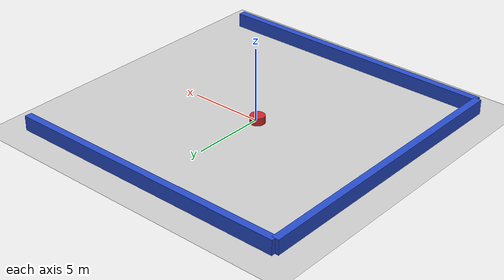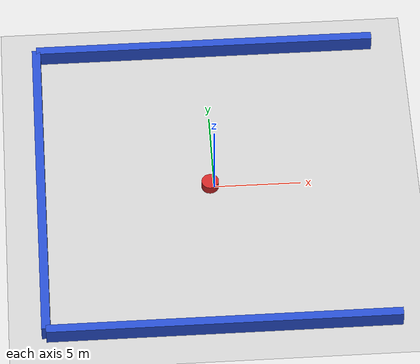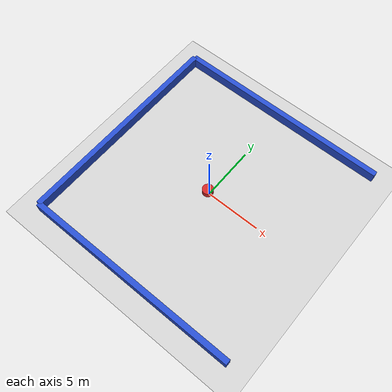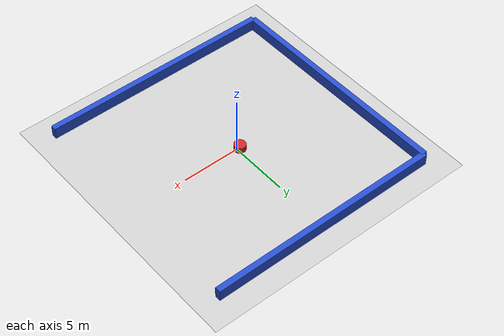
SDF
<?xml version="1.0" ?>
<sdf version="1.6">
   <world name="default">
    <model name="ground_plane">
      <static>1</static>
      <link name="link">
        <collision name="collision">
          <geometry><plane><normal>0 0 1</normal><size>100 100</size></plane></geometry>
          <surface><friction><ode><mu>100</mu><mu2>50</mu2></ode><torsional><ode/></torsional></friction><contact><ode/></contact></surface>
        </collision>
        <visual name="visual">
          <cast_shadows>0</cast_shadows>
          <geometry><plane><normal>0 0 1</normal><size>100 100</size></plane></geometry>
          <material><ambient>0.8 0.8 0.8 1</ambient><diffuse>0.8 0.8 0.8 1</diffuse><specular>0.01 0.01 0.01 1</specular></material>
        </visual>
      </link>
    </model>
    <light name="sun" type="directional">
      <cast_shadows>1</cast_shadows>
      <pose>0 0 10 0 0 0</pose>
      <diffuse>1 1 1 1</diffuse>
      <specular>0.1 0.1 0.1 1</specular>
      <attenuation><range>1000</range><constant>0.9</constant><linear>0.01</linear><quadratic>0.001</quadratic></attenuation>
      <direction>-0.5 0.5 -1</direction>
    </light>

    <model name='hardlibobs_142'>
      <static>1</static>
      <pose frame=''>-0.225000 0.075000 0.000000 0.000000 0.000000 0.000000</pose>
      <link name='link'>
        <inertial>
          <mass>1</mass>
          <inertia>
            <ixx>0.145833</ixx>
            <ixy>0</ixy>
            <ixz>0</ixz>
            <iyy>0.145833</iyy>
            <iyz>0</iyz>
            <izz>0.125</izz>
          </inertia>
        </inertial>
        <collision name='collision'>
           <geometry>
            <cylinder>
                <radius>0.5000</radius>
                 <length> 1 </length>
            </cylinder>
          </geometry>
           <surface>
            <contact>
              <ode/>
            </contact>
            <bounce/>
            <friction>
              <torsional>
                <ode/>
              </torsional>
              <ode/>
            </friction>
          </surface>
        </collision>
        <visual name='visual'>
           <geometry>
            <cylinder>
                <radius>0.5000</radius>
                 <length> 1 </length>
            </cylinder>
          </geometry>
          <material>
            <script>
              <name>Gazebo/Red</name>
              <uri>file://media/materials/scripts/gazebo.material</uri>
            </script>
          </material>
        </visual>
        <self_collide>0</self_collide>
        <kinematic>0</kinematic>
        <gravity>1</gravity>
      </link>
      <plugin name='hardlibobs_142' filename='hardlibobs_142.so'/>
    </model>

    <model name='hardlibobs_152'>
      <static>1</static>
      <pose frame=''>-0.225000 0.075000 0.000000 0.000000 0.000000 0.000000</pose>
      <link name='link'>
        <inertial>
          <mass>1</mass>
          <inertia>
            <ixx>0.145833</ixx>
            <ixy>0</ixy>
            <ixz>0</ixz>
            <iyy>0.145833</iyy>
            <iyz>0</iyz>
            <izz>0.125</izz>
          </inertia>
        </inertial>
        <collision name='collision'>
           <geometry>
            <cylinder>
                <radius>0.5000</radius>
                 <length> 1 </length>
            </cylinder>
          </geometry>
           <surface>
            <contact>
              <ode/>
            </contact>
            <bounce/>
            <friction>
              <torsional>
                <ode/>
              </torsional>
              <ode/>
            </friction>
          </surface>
        </collision>
        <visual name='visual'>
           <geometry>
            <cylinder>
                <radius>0.5000</radius>
                 <length> 1 </length>
            </cylinder>
          </geometry>
          <material>
            <script>
              <name>Gazebo/Red</name>
              <uri>file://media/materials/scripts/gazebo.material</uri>
            </script>
          </material>
        </visual>
        <self_collide>0</self_collide>
        <kinematic>0</kinematic>
        <gravity>1</gravity>
      </link>
      <plugin name='hardlibobs_152' filename='hardlibobs_152.so'/>
    </model>

    <model name='hardlibobs_107'>
      <static>1</static>
      <pose frame=''>-0.225000 0.075000 0.000000 0.000000 0.000000 0.000000</pose>
      <link name='link'>
        <inertial>
          <mass>1</mass>
          <inertia>
            <ixx>0.145833</ixx>
            <ixy>0</ixy>
            <ixz>0</ixz>
            <iyy>0.145833</iyy>
            <iyz>0</iyz>
            <izz>0.125</izz>
          </inertia>
        </inertial>
        <collision name='collision'>
           <geometry>
            <cylinder>
                <radius>0.5000</radius>
                 <length> 1 </length>
            </cylinder>
          </geometry>
           <surface>
            <contact>
              <ode/>
            </contact>
            <bounce/>
            <friction>
              <torsional>
                <ode/>
              </torsional>
              <ode/>
            </friction>
          </surface>
        </collision>
        <visual name='visual'>
           <geometry>
            <cylinder>
                <radius>0.5000</radius>
                 <length> 1 </length>
            </cylinder>
          </geometry>
          <material>
            <script>
              <name>Gazebo/Red</name>
              <uri>file://media/materials/scripts/gazebo.material</uri>
            </script>
          </material>
        </visual>
        <self_collide>0</self_collide>
        <kinematic>0</kinematic>
        <gravity>1</gravity>
      </link>
      <plugin name='hardlibobs_107' filename='hardlibobs_107.so'/>
    </model>

    <model name='hardlibobs_11'>
      <static>1</static>
      <pose frame=''>-0.225000 0.075000 0.000000 0.000000 0.000000 0.000000</pose>
      <link name='link'>
        <inertial>
          <mass>1</mass>
          <inertia>
            <ixx>0.145833</ixx>
            <ixy>0</ixy>
            <ixz>0</ixz>
            <iyy>0.145833</iyy>
            <iyz>0</iyz>
            <izz>0.125</izz>
          </inertia>
        </inertial>
        <collision name='collision'>
           <geometry>
            <cylinder>
                <radius>0.5000</radius>
                 <length> 1 </length>
            </cylinder>
          </geometry>
           <surface>
            <contact>
              <ode/>
            </contact>
            <bounce/>
            <friction>
              <torsional>
                <ode/>
              </torsional>
              <ode/>
            </friction>
          </surface>
        </collision>
        <visual name='visual'>
           <geometry>
            <cylinder>
                <radius>0.5000</radius>
                 <length> 1 </length>
            </cylinder>
          </geometry>
          <material>
            <script>
              <name>Gazebo/Red</name>
              <uri>file://media/materials/scripts/gazebo.material</uri>
            </script>
          </material>
        </visual>
        <self_collide>0</self_collide>
        <kinematic>0</kinematic>
        <gravity>1</gravity>
      </link>
      <plugin name='hardlibobs_11' filename='hardlibobs_11.so'/>
    </model>

    <model name='hardlibobs_197'>
      <static>1</static>
      <pose frame=''>-0.225000 0.075000 0.000000 0.000000 0.000000 0.000000</pose>
      <link name='link'>
        <inertial>
          <mass>1</mass>
          <inertia>
            <ixx>0.145833</ixx>
            <ixy>0</ixy>
            <ixz>0</ixz>
            <iyy>0.145833</iyy>
            <iyz>0</iyz>
            <izz>0.125</izz>
          </inertia>
        </inertial>
        <collision name='collision'>
           <geometry>
            <cylinder>
                <radius>0.5000</radius>
                 <length> 1 </length>
            </cylinder>
          </geometry>
           <surface>
            <contact>
              <ode/>
            </contact>
            <bounce/>
            <friction>
              <torsional>
                <ode/>
              </torsional>
              <ode/>
            </friction>
          </surface>
        </collision>
        <visual name='visual'>
           <geometry>
            <cylinder>
                <radius>0.5000</radius>
                 <length> 1 </length>
            </cylinder>
          </geometry>
          <material>
            <script>
              <name>Gazebo/Red</name>
              <uri>file://media/materials/scripts/gazebo.material</uri>
            </script>
          </material>
        </visual>
        <self_collide>0</self_collide>
        <kinematic>0</kinematic>
        <gravity>1</gravity>
      </link>
      <plugin name='hardlibobs_197' filename='hardlibobs_197.so'/>
    </model>

    <model name='hardlibobs_190'>
      <static>1</static>
      <pose frame=''>-0.225000 0.075000 0.000000 0.000000 0.000000 0.000000</pose>
      <link name='link'>
        <inertial>
          <mass>1</mass>
          <inertia>
            <ixx>0.145833</ixx>
            <ixy>0</ixy>
            <ixz>0</ixz>
            <iyy>0.145833</iyy>
            <iyz>0</iyz>
            <izz>0.125</izz>
          </inertia>
        </inertial>
        <collision name='collision'>
           <geometry>
            <cylinder>
                <radius>0.5000</radius>
                 <length> 1 </length>
            </cylinder>
          </geometry>
           <surface>
            <contact>
              <ode/>
            </contact>
            <bounce/>
            <friction>
              <torsional>
                <ode/>
              </torsional>
              <ode/>
            </friction>
          </surface>
        </collision>
        <visual name='visual'>
           <geometry>
            <cylinder>
                <radius>0.5000</radius>
                 <length> 1 </length>
            </cylinder>
          </geometry>
          <material>
            <script>
              <name>Gazebo/Red</name>
              <uri>file://media/materials/scripts/gazebo.material</uri>
            </script>
          </material>
        </visual>
        <self_collide>0</self_collide>
        <kinematic>0</kinematic>
        <gravity>1</gravity>
      </link>
      <plugin name='hardlibobs_190' filename='hardlibobs_190.so'/>
    </model>

    <model name='hardlibobs_79'>
      <static>1</static>
      <pose frame=''>-0.225000 0.075000 0.000000 0.000000 0.000000 0.000000</pose>
      <link name='link'>
        <inertial>
          <mass>1</mass>
          <inertia>
            <ixx>0.145833</ixx>
            <ixy>0</ixy>
            <ixz>0</ixz>
            <iyy>0.145833</iyy>
            <iyz>0</iyz>
            <izz>0.125</izz>
          </inertia>
        </inertial>
        <collision name='collision'>
           <geometry>
            <cylinder>
                <radius>0.5000</radius>
                 <length> 1 </length>
            </cylinder>
          </geometry>
           <surface>
            <contact>
              <ode/>
            </contact>
            <bounce/>
            <friction>
              <torsional>
                <ode/>
              </torsional>
              <ode/>
            </friction>
          </surface>
        </collision>
        <visual name='visual'>
           <geometry>
            <cylinder>
                <radius>0.5000</radius>
                 <length> 1 </length>
            </cylinder>
          </geometry>
          <material>
            <script>
              <name>Gazebo/Red</name>
              <uri>file://media/materials/scripts/gazebo.material</uri>
            </script>
          </material>
        </visual>
        <self_collide>0</self_collide>
        <kinematic>0</kinematic>
        <gravity>1</gravity>
      </link>
      <plugin name='hardlibobs_79' filename='hardlibobs_79.so'/>
    </model>

    <model name='hardlibobs_191'>
      <static>1</static>
      <pose frame=''>-0.225000 0.075000 0.000000 0.000000 0.000000 0.000000</pose>
      <link name='link'>
        <inertial>
          <mass>1</mass>
          <inertia>
            <ixx>0.145833</ixx>
            <ixy>0</ixy>
            <ixz>0</ixz>
            <iyy>0.145833</iyy>
            <iyz>0</iyz>
            <izz>0.125</izz>
          </inertia>
        </inertial>
        <collision name='collision'>
           <geometry>
            <cylinder>
                <radius>0.5000</radius>
                 <length> 1 </length>
            </cylinder>
          </geometry>
           <surface>
            <contact>
              <ode/>
            </contact>
            <bounce/>
            <friction>
              <torsional>
                <ode/>
              </torsional>
              <ode/>
            </friction>
          </surface>
        </collision>
        <visual name='visual'>
           <geometry>
            <cylinder>
                <radius>0.5000</radius>
                 <length> 1 </length>
            </cylinder>
          </geometry>
          <material>
            <script>
              <name>Gazebo/Red</name>
              <uri>file://media/materials/scripts/gazebo.material</uri>
            </script>
          </material>
        </visual>
        <self_collide>0</self_collide>
        <kinematic>0</kinematic>
        <gravity>1</gravity>
      </link>
      <plugin name='hardlibobs_191' filename='hardlibobs_191.so'/>
    </model>

    <model name='hardlibobs_22'>
      <static>1</static>
      <pose frame=''>-0.225000 0.075000 0.000000 0.000000 0.000000 0.000000</pose>
      <link name='link'>
        <inertial>
          <mass>1</mass>
          <inertia>
            <ixx>0.145833</ixx>
            <ixy>0</ixy>
            <ixz>0</ixz>
            <iyy>0.145833</iyy>
            <iyz>0</iyz>
            <izz>0.125</izz>
          </inertia>
        </inertial>
        <collision name='collision'>
           <geometry>
            <cylinder>
                <radius>0.5000</radius>
                 <length> 1 </length>
            </cylinder>
          </geometry>
           <surface>
            <contact>
              <ode/>
            </contact>
            <bounce/>
            <friction>
              <torsional>
                <ode/>
              </torsional>
              <ode/>
            </friction>
          </surface>
        </collision>
        <visual name='visual'>
           <geometry>
            <cylinder>
                <radius>0.5000</radius>
                 <length> 1 </length>
            </cylinder>
          </geometry>
          <material>
            <script>
              <name>Gazebo/Red</name>
              <uri>file://media/materials/scripts/gazebo.material</uri>
            </script>
          </material>
        </visual>
        <self_collide>0</self_collide>
        <kinematic>0</kinematic>
        <gravity>1</gravity>
      </link>
      <plugin name='hardlibobs_22' filename='hardlibobs_22.so'/>
    </model>

    <model name='hardlibobs_166'>
      <static>1</static>
      <pose frame=''>-0.225000 0.075000 0.000000 0.000000 0.000000 0.000000</pose>
      <link name='link'>
        <inertial>
          <mass>1</mass>
          <inertia>
            <ixx>0.145833</ixx>
            <ixy>0</ixy>
            <ixz>0</ixz>
            <iyy>0.145833</iyy>
            <iyz>0</iyz>
            <izz>0.125</izz>
          </inertia>
        </inertial>
        <collision name='collision'>
           <geometry>
            <cylinder>
                <radius>0.5000</radius>
                 <length> 1 </length>
            </cylinder>
          </geometry>
           <surface>
            <contact>
              <ode/>
            </contact>
            <bounce/>
            <friction>
              <torsional>
                <ode/>
              </torsional>
              <ode/>
            </friction>
          </surface>
        </collision>
        <visual name='visual'>
           <geometry>
            <cylinder>
                <radius>0.5000</radius>
                 <length> 1 </length>
            </cylinder>
          </geometry>
          <material>
            <script>
              <name>Gazebo/Red</name>
              <uri>file://media/materials/scripts/gazebo.material</uri>
            </script>
          </material>
        </visual>
        <self_collide>0</self_collide>
        <kinematic>0</kinematic>
        <gravity>1</gravity>
      </link>
      <plugin name='hardlibobs_166' filename='hardlibobs_166.so'/>
    </model>

      <model name="back_wall">
      <static>1</static>\   <pose>-10 0 .5 0 0 0</pose>        <link name="box_link">

	<collision name='collision'>
            <geometry>
              <box>
                <size>.5 20 1</size>
              </box>
            </geometry>
           <surface>
            <contact>
              <ode/>
            </contact>
            <bounce/>
            <friction>
              <torsional>
                <ode/>
              </torsional>
              <ode/>
            </friction>
          </surface>
        </collision>

          <visual name="visual">
            <geometry>
              <box>
                <size>.5 20 1</size>
              </box>
            </geometry>
          <material>
                 <script>
                     <name>Gazebo/Blue</name>
                         <uri>file://media/materials/scripts/gazebo.material</uri>
                         </script>
                     </material>
          </visual>
        </link>
      </model>
      <model name="top_wall">
      <static>1</static>
       <pose>0 10 .5 0 0 0</pose>        <link name="box_link">

	<collision name='collision'>
           <geometry>
              <box>
                <size>20 .5 1</size>
              </box>
            </geometry>
           <surface>
            <contact>
              <ode/>
            </contact>
            <bounce/>
            <friction>
              <torsional>
                <ode/>
              </torsional>
              <ode/>
            </friction>
          </surface>
        </collision>
          <visual name="visual">
            <geometry>
              <box>
                <size>20 .5 1</size>
              </box>
            </geometry>
          <material>
                 <script>
                     <name>Gazebo/Blue</name>
                         <uri>file://media/materials/scripts/gazebo.material</uri>
                         </script>
                     </material>
          </visual>
        </link>
      </model>
      <model name="bottom_wall">
      <static>1</static>
       <pose>0 -10 .5 0 0 0</pose>        <link name="box_link">
	<collision name='collision'>
            <geometry>
              <box>
                <size>20 .5 1</size>
              </box>
            </geometry>
           <surface>
            <contact>
              <ode/>
            </contact>
            <bounce/>
            <friction>
              <torsional>
                <ode/>
              </torsional>
              <ode/>
            </friction>
          </surface>
        </collision>
          <visual name="visual">
            <geometry>
              <box>
                <size>20 .5 1</size>
              </box>
            </geometry>
          <material>
                 <script>
                     <name>Gazebo/Blue</name>
                         <uri>file://media/materials/scripts/gazebo.material</uri>
                         </script>
                     </material>
          </visual>
        </link>
      </model>
   </world>
</sdf>
